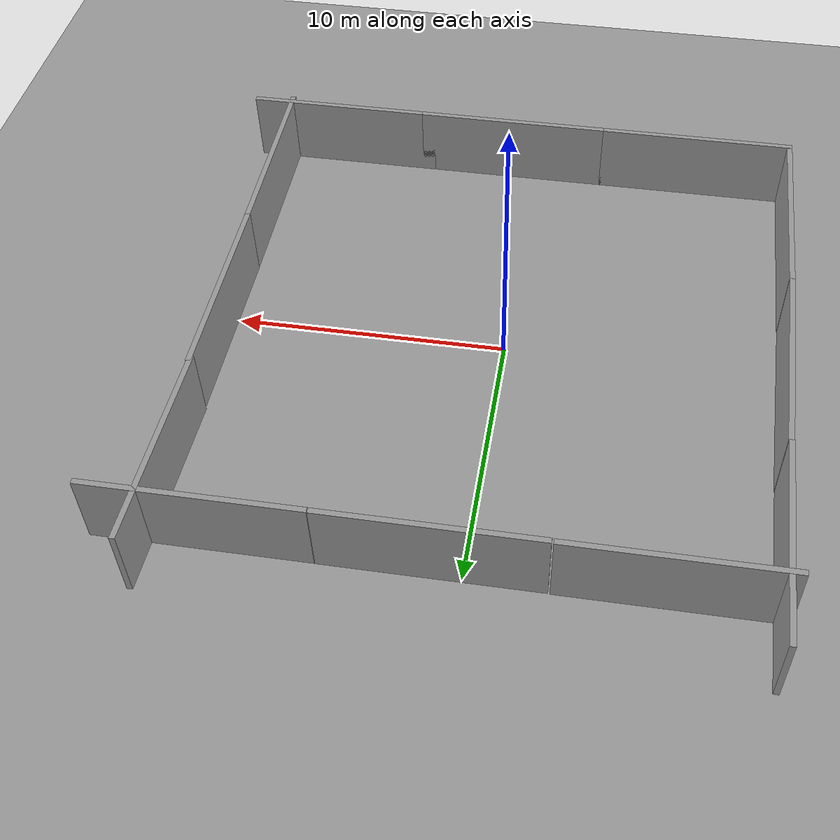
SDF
<sdf version="1.4">
 <world name="default">
  <light name="sun" type="directional">
   <pose>0 0 10 0 -0 0</pose>
   <diffuse>0.8 0.8 0.8 1</diffuse>
   <specular>0.2 0.2 0.2 1</specular>
   <attenuation>
    <range>1000</range>
    <constant>0.9</constant>
    <linear>0.01</linear>
    <quadratic>0.001</quadratic>
   </attenuation>
   <direction>0.5 0.1 -0.9</direction>
  </light>
  <scene><ambient>0.4 0.4 0.4 1</ambient><background>0.7 0.7 0.7 1</background><shadows>1</shadows></scene>
  <physics type="ode">
   <max_step_size>0.01</max_step_size>
   <real_time_factor>1</real_time_factor>
   <real_time_update_rate>100</real_time_update_rate>
   <gravity>0 0 -9.8</gravity>
  </physics>
  <model name="ground_plane_0">
   <static>1</static>
   <link name="link">
    <collision name="collision">
     <geometry><plane><normal>0 0 1</normal><size>100 100</size></plane></geometry>
     <surface><friction><ode><mu>100</mu><mu2>50</mu2></ode></friction></surface>
    </collision>
    <visual name="visual">
     <cast_shadows>0</cast_shadows>
     <geometry><plane><normal>0 0 1</normal><size>100 100</size></plane></geometry>
     <material>
      <script><uri>file://media/materials/scripts/gazebo.material</uri><name>Gazebo/Grey</name></script>
     </material>
    </visual>
    <velocity_decay><linear>0</linear><angular>0</angular></velocity_decay>
   </link>
   <pose>0.497681 0 0 0 -0 0</pose>
  </model>
  <spherical_coordinates>
   <surface_model>EARTH_WGS84</surface_model>
   <latitude_deg>0</latitude_deg>
   <longitude_deg>0</longitude_deg>
   <elevation>0</elevation>
   <heading_deg>0</heading_deg>
  </spherical_coordinates>
  <model name="grey_wall">
   <static>1</static>
   <link name="link">
    <pose>0 0 1.4 0 -0 0</pose>
    <collision name="collision"><geometry><box><size>7.5 0.2 2.8</size></box></geometry></collision>
    <visual name="visual">
     <cast_shadows>0</cast_shadows>
     <geometry><box><size>7.5 0.2 2.8</size></box></geometry>
     <material>
      <script>
       <uri>model://grey_wall/materials/scripts</uri>
       <uri>model://grey_wall/materials/textures</uri>
       <name>vrc/grey_wall</name>
      </script>
     </material>
    </visual>
    <velocity_decay><linear>0</linear><angular>0</angular></velocity_decay>
   </link>
   <pose>-6.41846 -10 0 0 -0 0</pose>
  </model>
  <model name="grey_wall_0">
   <static>1</static>
   <link name="link">
    <pose>0 0 1.4 0 -0 0</pose>
    <collision name="collision"><geometry><box><size>7.5 0.2 2.8</size></box></geometry></collision>
    <visual name="visual">
     <cast_shadows>0</cast_shadows>
     <geometry><box><size>7.5 0.2 2.8</size></box></geometry>
     <material>
      <script>
       <uri>model://grey_wall/materials/scripts</uri>
       <uri>model://grey_wall/materials/textures</uri>
       <name>vrc/grey_wall</name>
      </script>
     </material>
    </visual>
    <velocity_decay><linear>0</linear><angular>0</angular></velocity_decay>
   </link>
   <pose>1 -10 0 0 -0 0</pose>
  </model>
  <model name="grey_wall_1">
   <static>1</static>
   <link name="link">
    <pose>0 0 1.4 0 -0 0</pose>
    <collision name="collision"><geometry><box><size>7.5 0.2 2.8</size></box></geometry></collision>
    <visual name="visual">
     <cast_shadows>0</cast_shadows>
     <geometry><box><size>7.5 0.2 2.8</size></box></geometry>
     <material>
      <script>
       <uri>model://grey_wall/materials/scripts</uri>
       <uri>model://grey_wall/materials/textures</uri>
       <name>vrc/grey_wall</name>
      </script>
     </material>
    </visual>
    <velocity_decay><linear>0</linear><angular>0</angular></velocity_decay>
   </link>
   <pose>8 -10 0 0 -0 0</pose>
  </model>
  <model name="grey_wall_3">
   <static>1</static>
   <link name="link">
    <pose>0 0 1.4 0 -0 0</pose>
    <collision name="collision"><geometry><box><size>7.5 0.2 2.8</size></box></geometry></collision>
    <visual name="visual">
     <cast_shadows>0</cast_shadows>
     <geometry><box><size>7.5 0.2 2.8</size></box></geometry>
     <material>
      <script>
       <uri>model://grey_wall/materials/scripts</uri>
       <uri>model://grey_wall/materials/textures</uri>
       <name>vrc/grey_wall</name>
      </script>
     </material>
    </visual>
    <velocity_decay><linear>0</linear><angular>0</angular></velocity_decay>
   </link>
   <pose>-6.5519 10.0207 0 0 -0 0</pose>
  </model>
  <model name="grey_wall_4">
   <static>1</static>
   <link name="link">
    <pose>0 0 1.4 0 -0 0</pose>
    <collision name="collision"><geometry><box><size>7.5 0.2 2.8</size></box></geometry></collision>
    <visual name="visual">
     <cast_shadows>0</cast_shadows>
     <geometry><box><size>7.5 0.2 2.8</size></box></geometry>
     <material>
      <script>
       <uri>model://grey_wall/materials/scripts</uri>
       <uri>model://grey_wall/materials/textures</uri>
       <name>vrc/grey_wall</name>
      </script>
     </material>
    </visual>
    <velocity_decay><linear>0</linear><angular>0</angular></velocity_decay>
   </link>
   <pose>1.00606 10.0055 0 0 -0 0</pose>
  </model>
  <model name="grey_wall_5">
   <static>1</static>
   <link name="link">
    <pose>0 0 1.4 0 -0 0</pose>
    <collision name="collision"><geometry><box><size>7.5 0.2 2.8</size></box></geometry></collision>
    <visual name="visual">
     <cast_shadows>0</cast_shadows>
     <geometry><box><size>7.5 0.2 2.8</size></box></geometry>
     <material>
      <script>
       <uri>model://grey_wall/materials/scripts</uri>
       <uri>model://grey_wall/materials/textures</uri>
       <name>vrc/grey_wall</name>
      </script>
     </material>
    </visual>
    <velocity_decay><linear>0</linear><angular>0</angular></velocity_decay>
   </link>
   <pose>8.52815 10 0 0 -0 0</pose>
  </model>
  <model name="grey_wall_6">
   <static>1</static>
   <link name="link">
    <pose>0 0 1.4 0 -0 0</pose>
    <collision name="collision"><geometry><box><size>7.5 0.2 2.8</size></box></geometry></collision>
    <visual name="visual">
     <cast_shadows>0</cast_shadows>
     <geometry><box><size>7.5 0.2 2.8</size></box></geometry>
     <material>
      <script>
       <uri>model://grey_wall/materials/scripts</uri>
       <uri>model://grey_wall/materials/textures</uri>
       <name>vrc/grey_wall</name>
      </script>
     </material>
    </visual>
    <velocity_decay><linear>0</linear><angular>0</angular></velocity_decay>
   </link>
   <pose>10.2117 -6.54571 0 0 -0 1.57819</pose>
  </model>
  <model name="grey_wall_7">
   <static>1</static>
   <link name="link">
    <pose>0 0 1.4 0 -0 0</pose>
    <collision name="collision"><geometry><box><size>7.5 0.2 2.8</size></box></geometry></collision>
    <visual name="visual">
     <cast_shadows>0</cast_shadows>
     <geometry><box><size>7.5 0.2 2.8</size></box></geometry>
     <material>
      <script>
       <uri>model://grey_wall/materials/scripts</uri>
       <uri>model://grey_wall/materials/textures</uri>
       <name>vrc/grey_wall</name>
      </script>
     </material>
    </visual>
    <velocity_decay><linear>0</linear><angular>0</angular></velocity_decay>
   </link>
   <pose>10.1838 0.83582 0 0 -0 1.56872</pose>
  </model>
  <model name="grey_wall_9">
   <static>1</static>
   <link name="link">
    <pose>0 0 1.4 0 -0 0</pose>
    <collision name="collision"><geometry><box><size>7.5 0.2 2.8</size></box></geometry></collision>
    <visual name="visual">
     <cast_shadows>0</cast_shadows>
     <geometry><box><size>7.5 0.2 2.8</size></box></geometry>
     <material>
      <script>
       <uri>model://grey_wall/materials/scripts</uri>
       <uri>model://grey_wall/materials/textures</uri>
       <name>vrc/grey_wall</name>
      </script>
     </material>
    </visual>
    <velocity_decay><linear>0</linear><angular>0</angular></velocity_decay>
   </link>
   <pose>10.23 8.13098 0 0 -0 1.54895</pose>
  </model>
  <model name="grey_wall_11">
   <static>1</static>
   <link name="link">
    <pose>0 0 1.4 0 -0 0</pose>
    <collision name="collision"><geometry><box><size>7.5 0.2 2.8</size></box></geometry></collision>
    <visual name="visual">
     <cast_shadows>0</cast_shadows>
     <geometry><box><size>7.5 0.2 2.8</size></box></geometry>
     <material>
      <script>
       <uri>model://grey_wall/materials/scripts</uri>
       <uri>model://grey_wall/materials/textures</uri>
       <name>vrc/grey_wall</name>
      </script>
     </material>
    </visual>
    <velocity_decay><linear>0</linear><angular>0</angular></velocity_decay>
   </link>
   <pose>-10.0713 -6.13644 0 0 -0 1.56723</pose>
  </model>
  <model name="grey_wall_12">
   <static>1</static>
   <link name="link">
    <pose>0 0 1.4 0 -0 0</pose>
    <collision name="collision"><geometry><box><size>7.5 0.2 2.8</size></box></geometry></collision>
    <visual name="visual">
     <cast_shadows>0</cast_shadows>
     <geometry><box><size>7.5 0.2 2.8</size></box></geometry>
     <material>
      <script>
       <uri>model://grey_wall/materials/scripts</uri>
       <uri>model://grey_wall/materials/textures</uri>
       <name>vrc/grey_wall</name>
      </script>
     </material>
    </visual>
    <velocity_decay><linear>0</linear><angular>0</angular></velocity_decay>
   </link>
   <pose>-9.9855 1.33603 0 0 -0 1.54851</pose>
  </model>
  <model name="grey_wall_13">
   <static>1</static>
   <link name="link">
    <pose>0 0 1.4 0 -0 0</pose>
    <collision name="collision"><geometry><box><size>7.5 0.2 2.8</size></box></geometry></collision>
    <visual name="visual">
     <cast_shadows>0</cast_shadows>
     <geometry><box><size>7.5 0.2 2.8</size></box></geometry>
     <material>
      <script>
       <uri>model://grey_wall/materials/scripts</uri>
       <uri>model://grey_wall/materials/textures</uri>
       <name>vrc/grey_wall</name>
      </script>
     </material>
    </visual>
    <velocity_decay><linear>0</linear><angular>0</angular></velocity_decay>
   </link>
   <pose>-9.86302 8.79416 0 0 -0 1.55589</pose>
  </model>
 </world>
</sdf>
